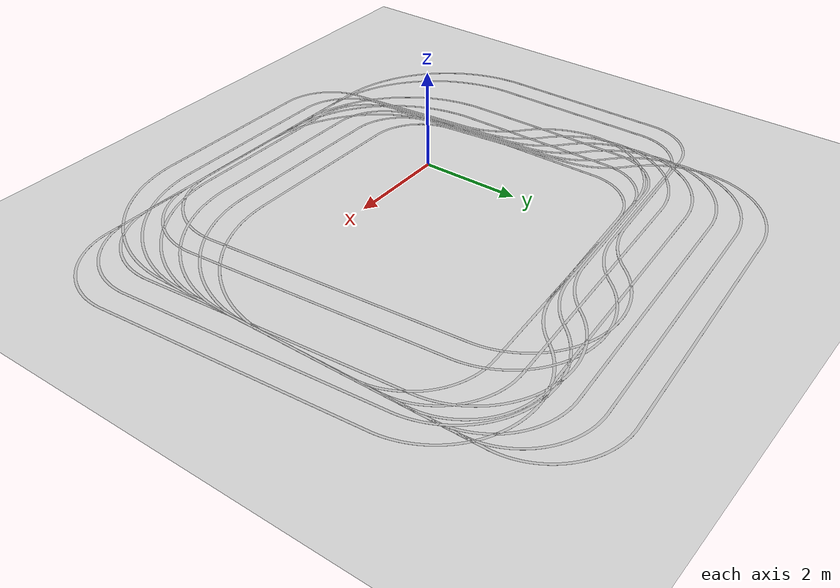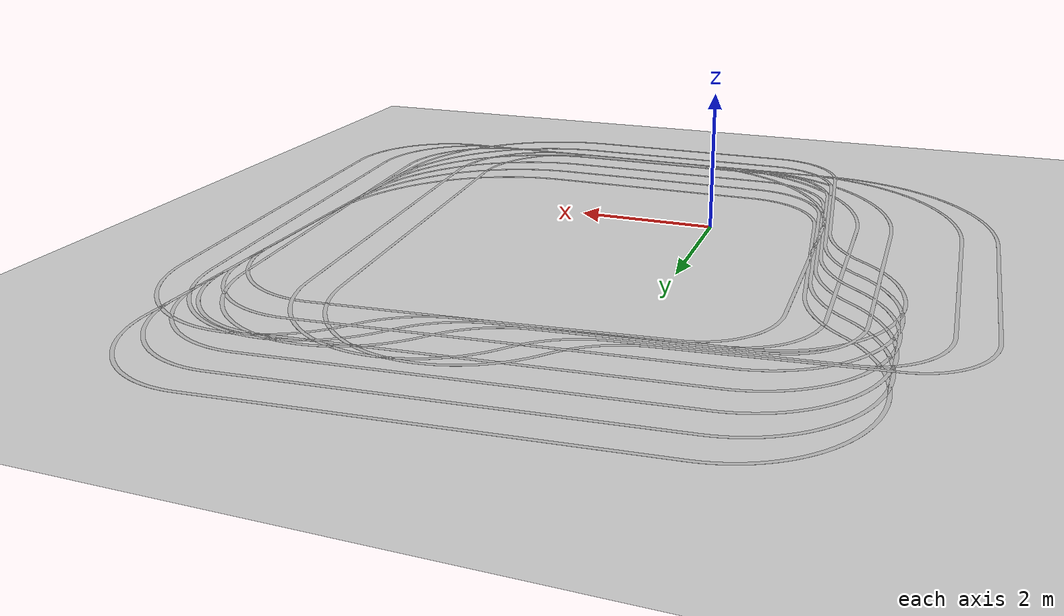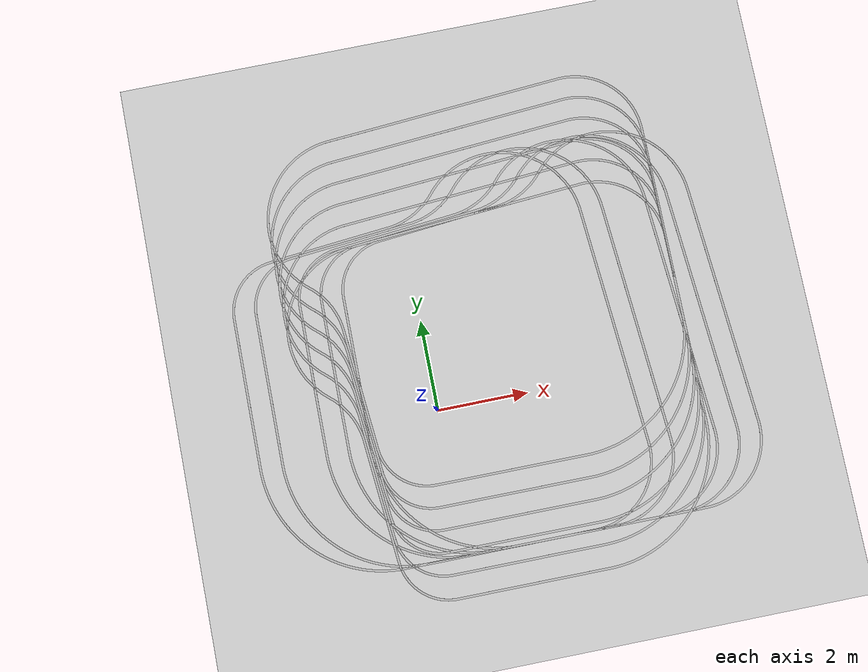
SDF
<sdf version="1.4">
 <world name="default">
  <scene><ambient>0.4 0.4 0.4 1</ambient><background>0.7 0.7 0.7 1</background><shadows>true</shadows></scene>
  <include><uri>model://sun</uri></include>
  <include><uri>model://ground_plane</uri></include>
  <include>
   <name>l1</name>
   <uri>model://yellow_line</uri>
   <pose>1.25 0 0.0001 0 0 1.570796</pose>
   <static>true</static>
  </include>
  <include>
   <name>l2</name>
   <uri>model://yellow_line</uri>
   <pose>0.025 1.25 0.0001 0 0 0</pose>
   <static>true</static>
  </include>
  <include>
   <name>l3</name>
   <uri>model://yellow_line</uri>
   <pose>.515 1.25 0.0001 0 0 0</pose>
   <static>true</static>
  </include>
  <include>
   <name>l5</name>
   <uri>model://yellow_line</uri>
   <pose>1.495 1.25 0.0001 0 0 0</pose>
   <static>true</static>
  </include>
  <include>
   <name>l6</name>
   <uri>model://yellow_line</uri>
   <pose>1.985 1.25 0.0001 0 0 0</pose>
   <static>true</static>
  </include>
  <include>
   <name>l7</name>
   <uri>model://yellow_line</uri>
   <pose>2.475 1.25 0.0001 0 0 0</pose>
   <static>true</static>
  </include>
  <include>
   <name>l8</name>
   <uri>model://yellow_line</uri>
   <pose>1.25 0.515 0.0001 0 0 1.570796</pose>
   <static>true</static>
  </include>
  <include>
   <name>l9</name>
   <uri>model://yellow_line</uri>
   <pose>1.25 1.005 0.0001 0 0 1.570796</pose>
   <static>true</static>
  </include>
  <include>
   <name>l10</name>
   <uri>model://yellow_line</uri>
   <pose>1.25 1.495 0.0001 0 0 1.570796</pose>
   <static>true</static>
  </include>
  <include>
   <name>l11</name>
   <uri>model://yellow_line</uri>
   <pose>1.25 1.985 0.0001 0 0 1.570796</pose>
   <static>true</static>
  </include>
  <include>
   <name>l12</name>
   <uri>model://yellow_line</uri>
   <pose>1.25 2.475 0.0001 0 0 1.570796</pose>
   <static>true</static>
  </include>
  <physics type="ode">
   <real_time_update_rate>1000.0</real_time_update_rate>
   <max_step_size>0.001</max_step_size>
   <real_time_factor>1</real_time_factor>
   <ode>
    <solver>
     <type>quick</type>
     <iters>150</iters>
     <precon_iters>0</precon_iters>
     <sor>1.400000</sor>
     <use_dynamic_moi_rescaling>1</use_dynamic_moi_rescaling>
    </solver>
    <constraints>
     <cfm>0.00001</cfm>
     <erp>0.2</erp>
     <contact_max_correcting_vel>2000.000000</contact_max_correcting_vel>
     <contact_surface_layer>0.01000</contact_surface_layer>
    </constraints>
   </ode>
  </physics>
 </world>
</sdf>

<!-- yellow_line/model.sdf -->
<sdf version="1.5">
  <model name="yellow_line">
    <static>true</static>
    <link name="link">
      <pose>0 0 0 0 0 0</pose>
      <collision name="collision">
        <geometry>
            <mesh>
              <uri>
                model://yellow_line/mesh/yellow_line.stl
              </uri>
              <scale>
                1 1 1
              </scale>
            </mesh>
        </geometry>
      </collision>
      <visual name="visual">
        <cast_shadows>false</cast_shadows>
        <geometry>
            <mesh>
              <uri>
                model://yellow_line/mesh/yellow_line.stl
              </uri>
              <scale>
                1 1 1
              </scale>
            </mesh>
        </geometry>
      </visual>
    </link>
  </model>
</sdf>
